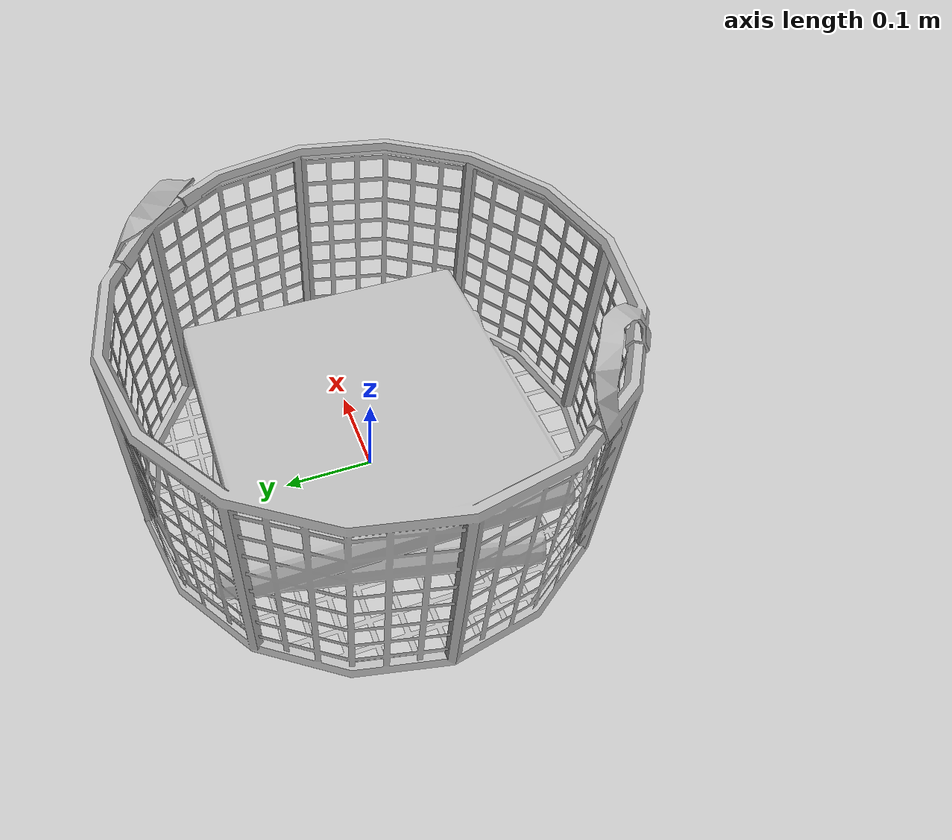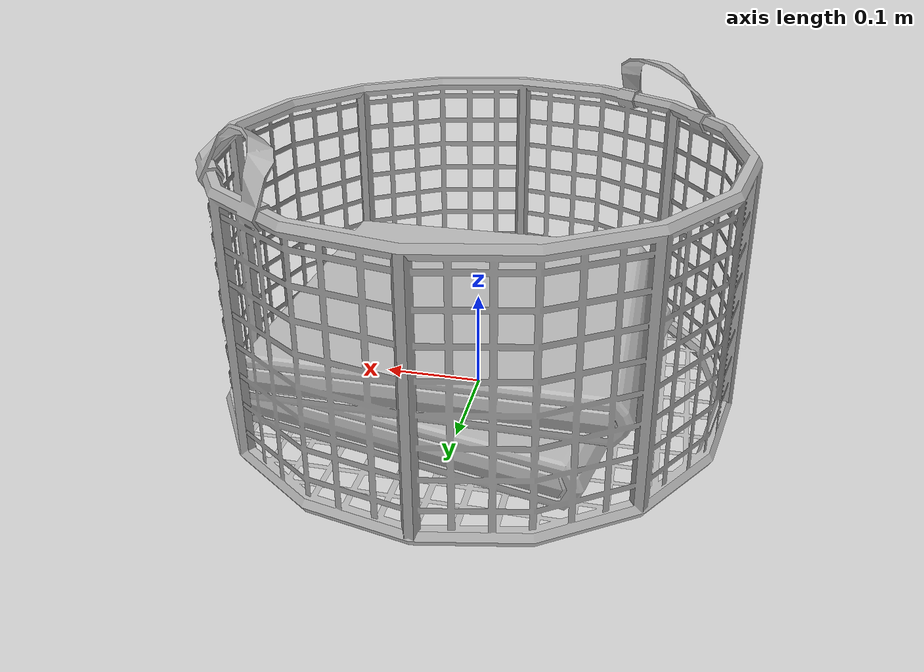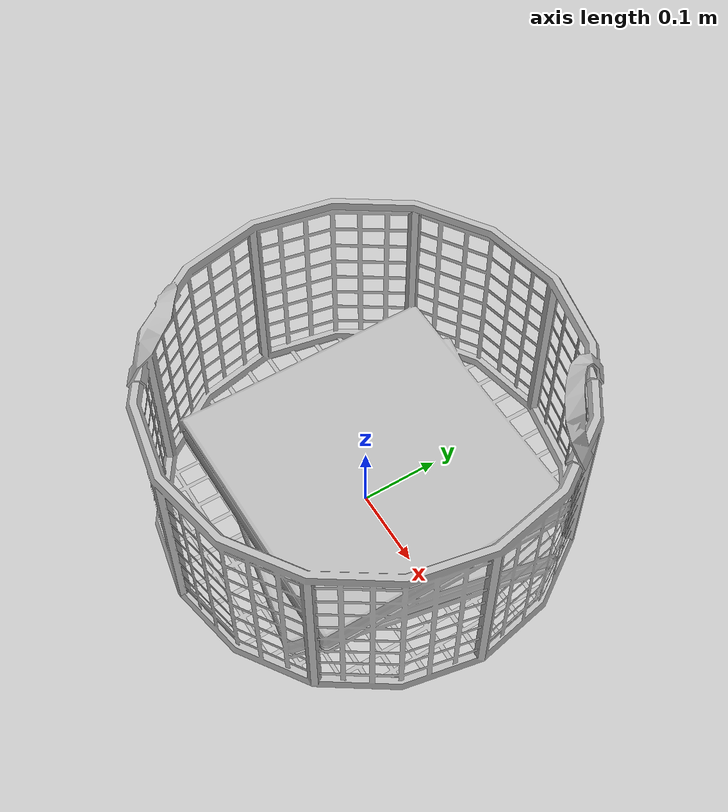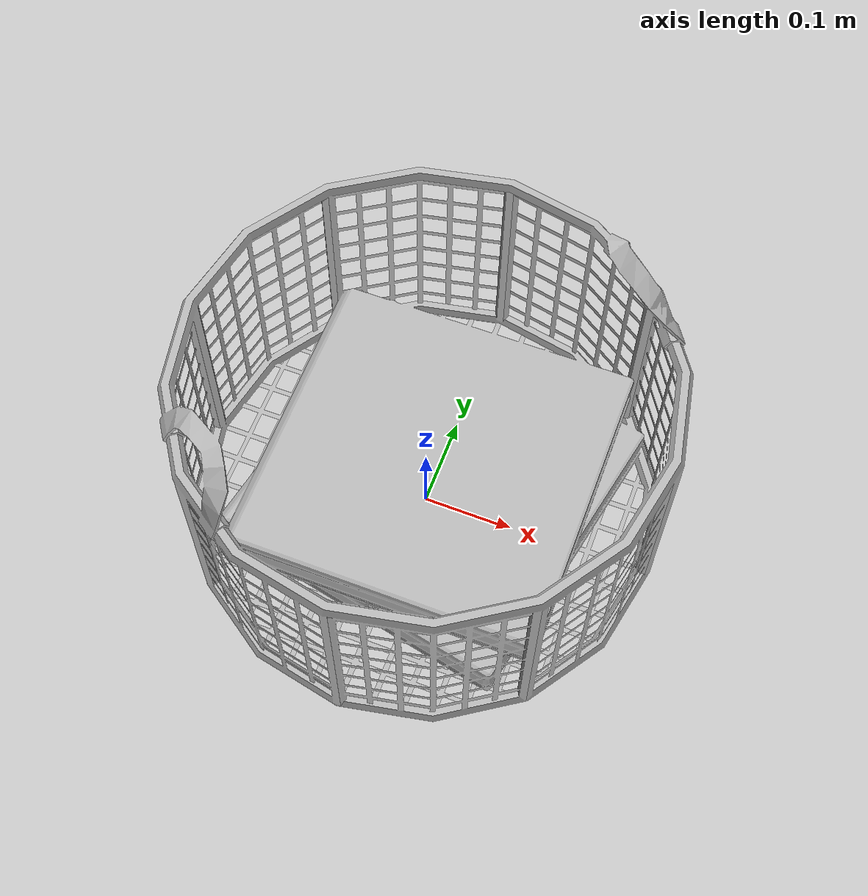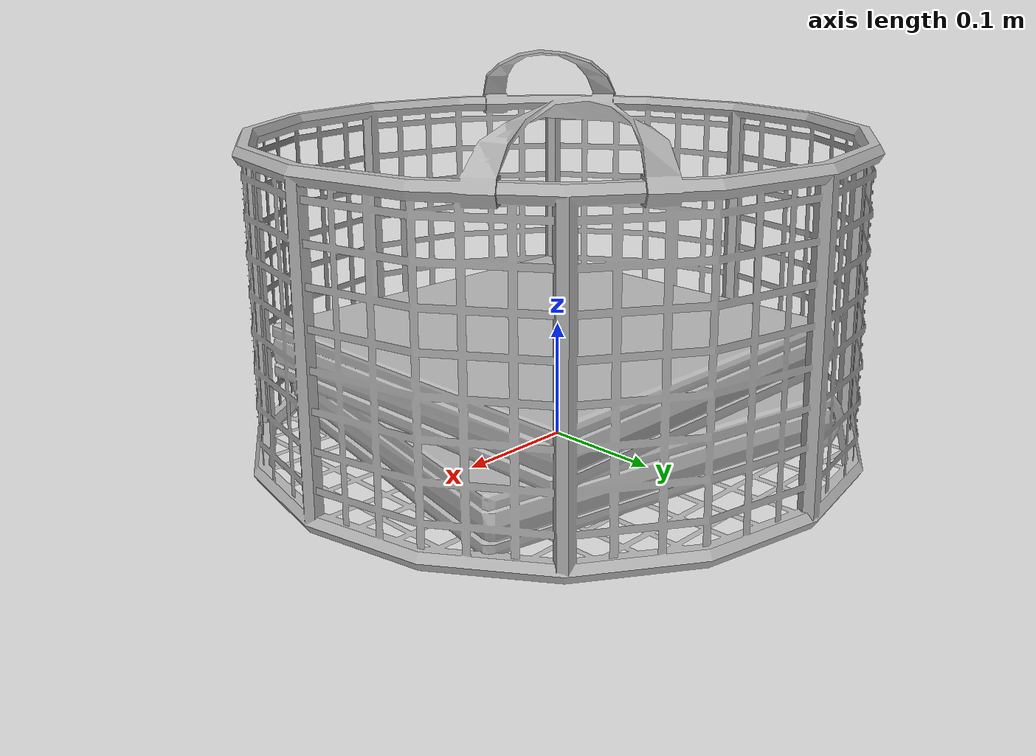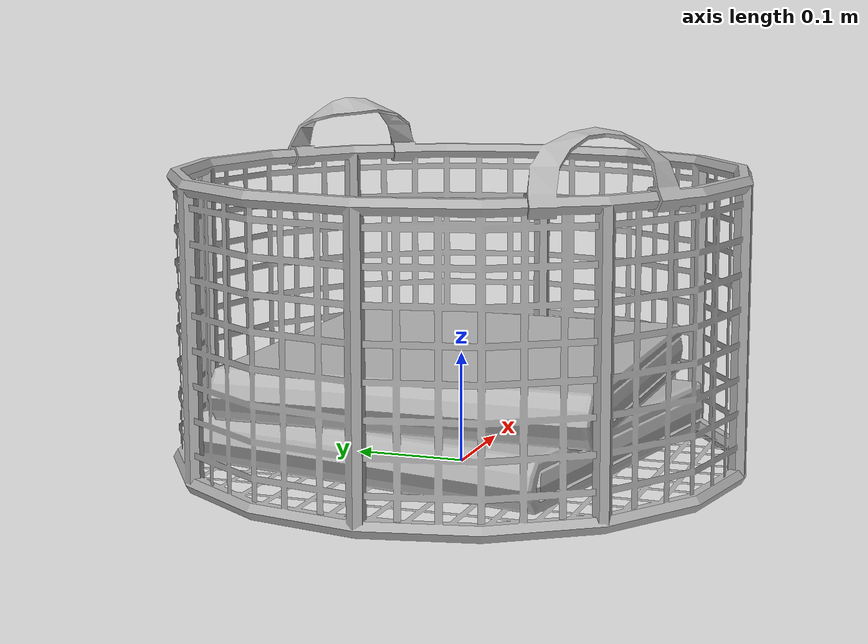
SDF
<?xml version='1.0'?>
<sdf version='1.4'>
  <model name='s__1137'>
    <pose>0 0 0 0 0 0</pose>
    <static>true</static>
    <link name='link'>
      <collision name='collision'>
        <pose>0 0 0 0 0 0</pose>
        <geometry>
          <box>
            <size>0.52 0.52 2</size>
          </box>
        </geometry>
      </collision>
      <visual name='visual'>
        <pose>0 0 0 0 0 0</pose>
        <geometry>
          <mesh><uri>model://s__1137/s__1137.dae</uri></mesh>
        </geometry>
      </visual>
    </link>
  </model>
</sdf>
